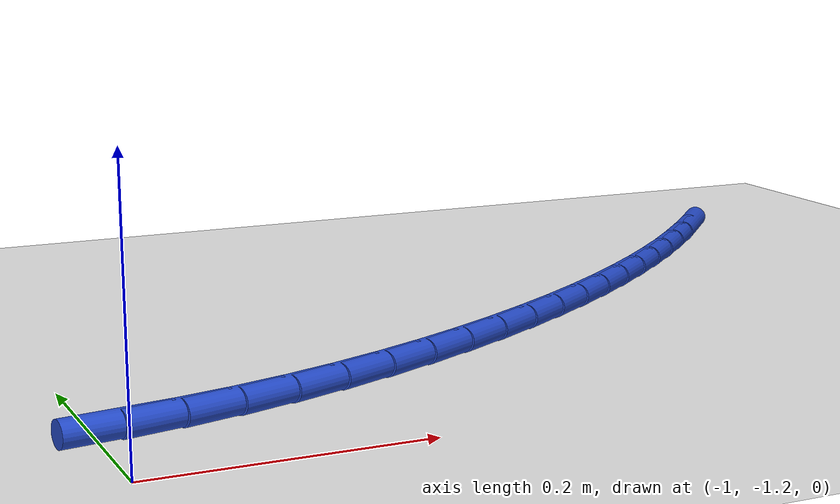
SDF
<sdf version="1.6">
 <world name="default">
  <model name="ground_plane">
   <static>1</static>
   <link name="link">
    <collision name="collision">
     <geometry><plane><normal>0 0 1</normal><size>100 100</size></plane></geometry>
     <surface><friction><ode><mu>100</mu><mu2>50</mu2></ode></friction></surface>
    </collision>
    <visual name="visual">
     <cast_shadows>0</cast_shadows>
     <geometry><plane><normal>0 0 1</normal><size>100 100</size></plane></geometry>
     <material>
      <script><uri>file://media/materials/scripts/gazebo.material</uri><name>Gazebo/WhiteGlow</name></script>
     </material>
    </visual>
   </link>
  </model>
  <model name="line">
   <link name="link_122">
    <pose>-0.9866173099459802 -1.1156947073527839 0.01 0 1.57 0.15130313221212813</pose>
    <collision name="collision">
     <geometry><cylinder><radius>0.01</radius><length>0.08</length></cylinder></geometry>
    </collision>
    <visual name="visual">
     <material>
      <script><name>Gazebo/Blue</name><uri>file://media/materials/scripts/gazebo.material</uri></script>
     </material>
     <geometry><cylinder><radius>0.01</radius><length>0.08</length></cylinder></geometry>
    </visual>
   </link>
   <link name="link_123">
    <pose>-0.9453996997653558 -1.1094103251197844 0.01 0 1.57 0.21298393889338865</pose>
    <collision name="collision">
     <geometry><cylinder><radius>0.01</radius><length>0.08</length></cylinder></geometry>
    </collision>
    <visual name="visual">
     <material>
      <script><name>Gazebo/Blue</name><uri>file://media/materials/scripts/gazebo.material</uri></script>
     </material>
     <geometry><cylinder><radius>0.01</radius><length>0.08</length></cylinder></geometry>
    </visual>
   </link>
   <link name="link_124">
    <pose>-0.9042053689927414 -1.1005014769534454 0.01 0 1.57 0.26910845059648175</pose>
    <collision name="collision">
     <geometry><cylinder><radius>0.01</radius><length>0.08</length></cylinder></geometry>
    </collision>
    <visual name="visual">
     <material>
      <script><name>Gazebo/Blue</name><uri>file://media/materials/scripts/gazebo.material</uri></script>
     </material>
     <geometry><cylinder><radius>0.01</radius><length>0.08</length></cylinder></geometry>
    </visual>
   </link>
   <link name="link_125">
    <pose>-0.8631637193206728 -1.089182250111912 0.01 0 1.57 0.32018191671638535</pose>
    <collision name="collision">
     <geometry><cylinder><radius>0.01</radius><length>0.08</length></cylinder></geometry>
    </collision>
    <visual name="visual">
     <material>
      <script><name>Gazebo/Blue</name><uri>file://media/materials/scripts/gazebo.material</uri></script>
     </material>
     <geometry><cylinder><radius>0.01</radius><length>0.08</length></cylinder></geometry>
    </visual>
   </link>
   <link name="link_126">
    <pose>-0.8224041524416846 -1.0756667318533275 0.01 0 1.57 0.36672530494105193</pose>
    <collision name="collision">
     <geometry><cylinder><radius>0.01</radius><length>0.08</length></cylinder></geometry>
    </collision>
    <visual name="visual">
     <material>
      <script><name>Gazebo/Blue</name><uri>file://media/materials/scripts/gazebo.material</uri></script>
     </material>
     <geometry><cylinder><radius>0.01</radius><length>0.08</length></cylinder></geometry>
    </visual>
   </link>
   <link name="link_127">
    <pose>-0.7820560700483133 -1.0601690094358365 0.01 0 1.57 0.4092473216595633</pose>
    <collision name="collision">
     <geometry><cylinder><radius>0.01</radius><length>0.08</length></cylinder></geometry>
    </collision>
    <visual name="visual">
     <material>
      <script><name>Gazebo/Blue</name><uri>file://media/materials/scripts/gazebo.material</uri></script>
     </material>
     <geometry><cylinder><radius>0.01</radius><length>0.08</length></cylinder></geometry>
    </visual>
   </link>
   <link name="link_128">
    <pose>-0.7422488738330939 -1.0429031701175835 0.01 0 1.57 0.44822897731516953</pose>
    <collision name="collision">
     <geometry><cylinder><radius>0.01</radius><length>0.08</length></cylinder></geometry>
    </collision>
    <visual name="visual">
     <material>
      <script><name>Gazebo/Blue</name><uri>file://media/materials/scripts/gazebo.material</uri></script>
     </material>
     <geometry><cylinder><radius>0.01</radius><length>0.08</length></cylinder></geometry>
    </visual>
   </link>
   <link name="link_129">
    <pose>-0.7031119654885614 -1.0240833011567123 0.01 0 1.57 0.4841168856669566</pose>
    <collision name="collision">
     <geometry><cylinder><radius>0.01</radius><length>0.08</length></cylinder></geometry>
    </collision>
    <visual name="visual">
     <material>
      <script><name>Gazebo/Blue</name><uri>file://media/materials/scripts/gazebo.material</uri></script>
     </material>
     <geometry><cylinder><radius>0.01</radius><length>0.08</length></cylinder></geometry>
    </visual>
   </link>
   <link name="link_130">
    <pose>-0.6647747467072515 -1.003923489811368 0.01 0 1.57 0.5173632188072631</pose>
    <collision name="collision">
     <geometry><cylinder><radius>0.01</radius><length>0.08</length></cylinder></geometry>
    </collision>
    <visual name="visual">
     <material>
      <script><name>Gazebo/Blue</name><uri>file://media/materials/scripts/gazebo.material</uri></script>
     </material>
     <geometry><cylinder><radius>0.01</radius><length>0.08</length></cylinder></geometry>
    </visual>
   </link>
   <link name="link_131">
    <pose>-0.6273635720892269 -0.982634065660027 0.01 0 1.57 0.549250503607775</pose>
    <collision name="collision">
     <geometry><cylinder><radius>0.01</radius><length>0.08</length></cylinder></geometry>
    </collision>
    <visual name="visual">
     <material>
      <script><name>Gazebo/Blue</name><uri>file://media/materials/scripts/gazebo.material</uri></script>
     </material>
     <geometry><cylinder><radius>0.01</radius><length>0.08</length></cylinder></geometry>
    </visual>
   </link>
   <link name="link_132">
    <pose>-0.5909314286947093 -0.9603348813050916 0.01 0 1.57 0.5807793996933608</pose>
    <collision name="collision">
     <geometry><cylinder><radius>0.01</radius><length>0.08</length></cylinder></geometry>
    </collision>
    <visual name="visual">
     <material>
      <script><name>Gazebo/Blue</name><uri>file://media/materials/scripts/gazebo.material</uri></script>
     </material>
     <geometry><cylinder><radius>0.01</radius><length>0.08</length></cylinder></geometry>
    </visual>
   </link>
   <link name="link_133">
    <pose>-0.5554560636082101 -0.9370530032817651 0.01 0 1.57 0.6119051079422652</pose>
    <collision name="collision">
     <geometry><cylinder><radius>0.01</radius><length>0.08</length></cylinder></geometry>
    </collision>
    <visual name="visual">
     <material>
      <script><name>Gazebo/Blue</name><uri>file://media/materials/scripts/gazebo.material</uri></script>
     </material>
     <geometry><cylinder><radius>0.01</radius><length>0.08</length></cylinder></geometry>
    </visual>
   </link>
   <link name="link_134">
    <pose>-0.5209118022600403 -0.9128112785354163 0.01 0 1.57 0.642541534614874</pose>
    <collision name="collision">
     <geometry><cylinder><radius>0.01</radius><length>0.08</length></cylinder></geometry>
    </collision>
    <visual name="visual">
     <material>
      <script><name>Gazebo/Blue</name><uri>file://media/materials/scripts/gazebo.material</uri></script>
     </material>
     <geometry><cylinder><radius>0.01</radius><length>0.08</length></cylinder></geometry>
    </visual>
   </link>
   <link name="link_135">
    <pose>-0.48727297008051096 -0.8876325540114136 0.01 0 1.57 0.6726082305449386</pose>
    <collision name="collision">
     <geometry><cylinder><radius>0.01</radius><length>0.08</length></cylinder></geometry>
    </collision>
    <visual name="visual">
     <material>
      <script><name>Gazebo/Blue</name><uri>file://media/materials/scripts/gazebo.material</uri></script>
     </material>
     <geometry><cylinder><radius>0.01</radius><length>0.08</length></cylinder></geometry>
    </visual>
   </link>
   <link name="link_136">
    <pose>-0.4545138924999319 -0.861539676655125 0.01 0 1.57 0.7020312528484572</pose>
    <collision name="collision">
     <geometry><cylinder><radius>0.01</radius><length>0.08</length></cylinder></geometry>
    </collision>
    <visual name="visual">
     <material>
      <script><name>Gazebo/Blue</name><uri>file://media/materials/scripts/gazebo.material</uri></script>
     </material>
     <geometry><cylinder><radius>0.01</radius><length>0.08</length></cylinder></geometry>
    </visual>
   </link>
   <link name="link_137">
    <pose>-0.4226088949486155 -0.8345554934119203 0.01 0 1.57 0.7307438102232051</pose>
    <collision name="collision">
     <geometry><cylinder><radius>0.01</radius><length>0.08</length></cylinder></geometry>
    </collision>
    <visual name="visual">
     <material>
      <script><name>Gazebo/Blue</name><uri>file://media/materials/scripts/gazebo.material</uri></script>
     </material>
     <geometry><cylinder><radius>0.01</radius><length>0.08</length></cylinder></geometry>
    </visual>
   </link>
   <link name="link_138">
    <pose>-0.3915323028568716 -0.8067028512271676 0.01 0 1.57 0.7586866869742999</pose>
    <collision name="collision">
     <geometry><cylinder><radius>0.01</radius><length>0.08</length></cylinder></geometry>
    </collision>
    <visual name="visual">
     <material>
      <script><name>Gazebo/Blue</name><uri>file://media/materials/scripts/gazebo.material</uri></script>
     </material>
     <geometry><cylinder><radius>0.01</radius><length>0.08</length></cylinder></geometry>
    </visual>
   </link>
   <link name="link_139">
    <pose>-0.3612584416550112 -0.778004597046235 0.01 0 1.57 0.7858084521378833</pose>
    <collision name="collision">
     <geometry><cylinder><radius>0.01</radius><length>0.08</length></cylinder></geometry>
    </collision>
    <visual name="visual">
     <material>
      <script><name>Gazebo/Blue</name><uri>file://media/materials/scripts/gazebo.material</uri></script>
     </material>
     <geometry><cylinder><radius>0.01</radius><length>0.08</length></cylinder></geometry>
    </visual>
   </link>
   <link name="link_140">
    <pose>-0.33176163677334497 -0.7484835778144914 0.01 0 1.57 0.8120654695036302</pose>
    <collision name="collision">
     <geometry><cylinder><radius>0.01</radius><length>0.08</length></cylinder></geometry>
    </collision>
    <visual name="visual">
     <material>
      <script><name>Gazebo/Blue</name><uri>file://media/materials/scripts/gazebo.material</uri></script>
     </material>
     <geometry><cylinder><radius>0.01</radius><length>0.08</length></cylinder></geometry>
    </visual>
   </link>
   <link name="link_141">
    <pose>-0.3030162136421833 -0.7181626404773052 0.01 0 1.57 0.8375514422025448</pose>
    <collision name="collision">
     <geometry><cylinder><radius>0.01</radius><length>0.08</length></cylinder></geometry>
    </collision>
    <visual name="visual">
     <material>
      <script><name>Gazebo/Blue</name><uri>file://media/materials/scripts/gazebo.material</uri></script>
     </material>
     <geometry><cylinder><radius>0.01</radius><length>0.08</length></cylinder></geometry>
    </visual>
   </link>
  </model>
 </world>
</sdf>
